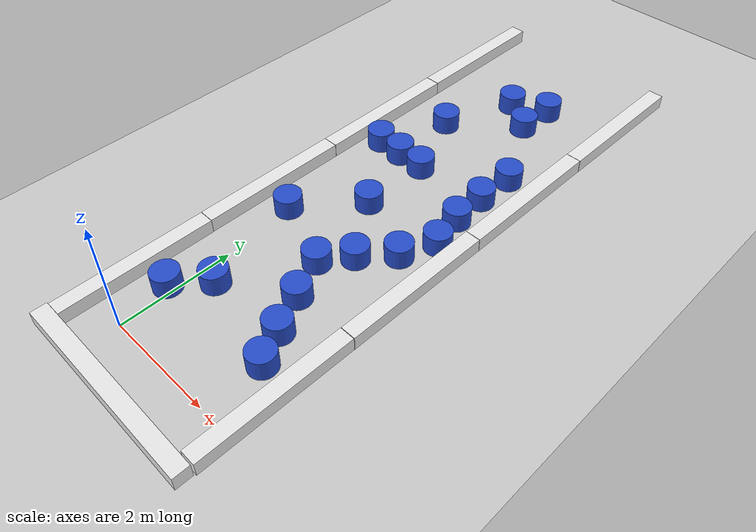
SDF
<sdf version="1.6">
 <world name="default">
  <light name="sun" type="directional">
   <pose>0 0 10 0 -0 0</pose>
   <diffuse>0.8 0.8 0.8 1</diffuse>
   <specular>0.1 0.1 0.1 1</specular>
   <attenuation>
    <range>1000</range>
    <constant>0.9</constant>
    <linear>0.01</linear>
    <quadratic>0.001</quadratic>
   </attenuation>
   <direction>-0.5 0.5 -1</direction>
  </light>
  <model name="ground_plane">
   <static>1</static>
   <link name="link">
    <collision name="collision">
     <geometry><plane><normal>0 0 1</normal><size>100 100</size></plane></geometry>
     <surface><friction><ode><mu>100</mu><mu2>50</mu2></ode></friction></surface>
    </collision>
    <visual name="visual">
     <cast_shadows>0</cast_shadows>
     <geometry><plane><normal>0 0 1</normal><size>100 100</size></plane></geometry>
     <material>
      <script><uri>file://media/materials/scripts/gazebo.material</uri><name>Gazebo/Grey</name></script>
     </material>
    </visual>
   </link>
  </model>
  <gravity>0 0 -9.8</gravity>
  <magnetic_field>6e-06 2.3e-05 -4.2e-05</magnetic_field>
  <atmosphere type="adiabatic"/>
  <physics name="default_physics" default="0" type="ode">
   <max_step_size>0.001</max_step_size>
   <real_time_factor>1</real_time_factor>
   <real_time_update_rate>1000</real_time_update_rate>
  </physics>
  <scene><ambient>0.4 0.4 0.4 1</ambient><background>0.7 0.7 0.7 1</background><shadows>1</shadows></scene>
  <spherical_coordinates>
   <surface_model>EARTH_WGS84</surface_model>
   <latitude_deg>0</latitude_deg>
   <longitude_deg>0</longitude_deg>
   <elevation>0</elevation>
   <heading_deg>0</heading_deg>
  </spherical_coordinates>
  <model name="unit_box_0_clone">
   <pose>0.905886 -0.752387 0.127652 -0.000405 -7e-06 1.5587</pose>
   <link name="link">
    <inertial>
     <mass>1</mass>
     <inertia>
      <ixx>0.166667</ixx>
      <ixy>0</ixy>
      <ixz>0</ixz>
      <iyy>0.166667</iyy>
      <iyz>0</iyz>
      <izz>0.166667</izz>
     </inertia>
    </inertial>
    <collision name="collision"><geometry><box><size>0.280228 3.67509 0.256789</size></box></geometry></collision>
    <visual name="visual">
     <geometry><box><size>0.280228 3.67509 0.256789</size></box></geometry>
     <material>
      <script><name>Gazebo/White</name><uri>file://media/materials/scripts/gazebo.material</uri></script>
     </material>
    </visual>
   </link>
  </model>
  <model name="unit_box_0_clone_0">
   <pose>2.63979 0.759503 0.128395 0 0 -0.005646</pose>
   <link name="link">
    <inertial>
     <mass>1</mass>
     <inertia>
      <ixx>0.166667</ixx>
      <ixy>0</ixy>
      <ixz>0</ixz>
      <iyy>0.166667</iyy>
      <iyz>0</iyz>
      <izz>0.166667</izz>
     </inertia>
    </inertial>
    <collision name="collision"><geometry><box><size>0.280228 2.7368 0.256789</size></box></geometry></collision>
    <visual name="visual">
     <geometry><box><size>0.280228 2.7368 0.256789</size></box></geometry>
     <material>
      <script><name>Gazebo/White</name><uri>file://media/materials/scripts/gazebo.material</uri></script>
     </material>
    </visual>
   </link>
  </model>
  <model name="unit_cylinder_0">
   <pose>-0.124687 0.936483 0.186705 1e-06 1e-06 0</pose>
   <link name="link">
    <inertial>
     <mass>1</mass>
     <inertia><ixx>0.145833</ixx><ixy>0</ixy><ixz>0</ixz><iyy>0.145833</iyy><iyz>0</iyz><izz>0.125</izz></inertia>
    </inertial>
    <collision name="collision">
     <geometry><cylinder><radius>0.245449</radius><length>0.373416</length></cylinder></geometry>
    </collision>
    <visual name="visual">
     <geometry><cylinder><radius>0.245449</radius><length>0.373416</length></cylinder></geometry>
     <material>
      <script><name>Gazebo/Blue</name><uri>file://media/materials/scripts/gazebo.material</uri></script>
     </material>
    </visual>
   </link>
  </model>
  <model name="unit_box_0_clone_0_clone">
   <pose>2.65794 3.50411 0.128395 0 0 -0.005644</pose>
   <link name="link">
    <inertial>
     <mass>1</mass>
     <inertia>
      <ixx>0.166667</ixx>
      <ixy>0</ixy>
      <ixz>0</ixz>
      <iyy>0.166667</iyy>
      <iyz>0</iyz>
      <izz>0.166667</izz>
     </inertia>
    </inertial>
    <collision name="collision"><geometry><box><size>0.280228 2.7368 0.256789</size></box></geometry></collision>
    <visual name="visual">
     <geometry><box><size>0.280228 2.7368 0.256789</size></box></geometry>
     <material>
      <script><name>Gazebo/White</name><uri>file://media/materials/scripts/gazebo.material</uri></script>
     </material>
    </visual>
   </link>
  </model>
  <model name="unit_box_0_clone_0_clone_0">
   <pose>-0.749935 0.777129 0.12839 -3e-06 -2e-06 -0.005822</pose>
   <link name="link">
    <inertial>
     <mass>1</mass>
     <inertia>
      <ixx>0.166667</ixx>
      <ixy>0</ixy>
      <ixz>0</ixz>
      <iyy>0.166667</iyy>
      <iyz>0</iyz>
      <izz>0.166667</izz>
     </inertia>
    </inertial>
    <collision name="collision"><geometry><box><size>0.280228 2.7368 0.256789</size></box></geometry></collision>
    <visual name="visual">
     <geometry><box><size>0.280228 2.7368 0.256789</size></box></geometry>
     <material>
      <script><name>Gazebo/White</name><uri>file://media/materials/scripts/gazebo.material</uri></script>
     </material>
    </visual>
   </link>
  </model>
  <model name="unit_box_0_clone_0_clone_1">
   <pose>-0.738821 3.51857 0.128395 0 0 -0.005644</pose>
   <link name="link">
    <inertial>
     <mass>1</mass>
     <inertia>
      <ixx>0.166667</ixx>
      <ixy>0</ixy>
      <ixz>0</ixz>
      <iyy>0.166667</iyy>
      <iyz>0</iyz>
      <izz>0.166667</izz>
     </inertia>
    </inertial>
    <collision name="collision"><geometry><box><size>0.280228 2.7368 0.256789</size></box></geometry></collision>
    <visual name="visual">
     <geometry><box><size>0.280228 2.7368 0.256789</size></box></geometry>
     <material>
      <script><name>Gazebo/White</name><uri>file://media/materials/scripts/gazebo.material</uri></script>
     </material>
    </visual>
   </link>
  </model>
  <model name="unit_box_0_clone_0_clone_2">
   <pose>-0.723653 6.2601 0.128395 0 0 -0.005646</pose>
   <link name="link">
    <inertial>
     <mass>1</mass>
     <inertia>
      <ixx>0.166667</ixx>
      <ixy>0</ixy>
      <ixz>0</ixz>
      <iyy>0.166667</iyy>
      <iyz>0</iyz>
      <izz>0.166667</izz>
     </inertia>
    </inertial>
    <collision name="collision"><geometry><box><size>0.280228 2.7368 0.256789</size></box></geometry></collision>
    <visual name="visual">
     <geometry><box><size>0.280228 2.7368 0.256789</size></box></geometry>
     <material>
      <script><name>Gazebo/White</name><uri>file://media/materials/scripts/gazebo.material</uri></script>
     </material>
    </visual>
   </link>
  </model>
  <model name="unit_box_0_clone_0_clone_3">
   <pose>2.67595 6.24565 0.128395 0 0 -0.005646</pose>
   <link name="link">
    <inertial>
     <mass>1</mass>
     <inertia>
      <ixx>0.166667</ixx>
      <ixy>0</ixy>
      <ixz>0</ixz>
      <iyy>0.166667</iyy>
      <iyz>0</iyz>
      <izz>0.166667</izz>
     </inertia>
    </inertial>
    <collision name="collision"><geometry><box><size>0.280228 2.7368 0.256789</size></box></geometry></collision>
    <visual name="visual">
     <geometry><box><size>0.280228 2.7368 0.256789</size></box></geometry>
     <material>
      <script><name>Gazebo/White</name><uri>file://media/materials/scripts/gazebo.material</uri></script>
     </material>
    </visual>
   </link>
  </model>
  <model name="unit_box_0_clone_0_clone_4">
   <pose>2.6941 8.98623 0.128395 0 0 -0.005644</pose>
   <link name="link">
    <inertial>
     <mass>1</mass>
     <inertia>
      <ixx>0.166667</ixx>
      <ixy>0</ixy>
      <ixz>0</ixz>
      <iyy>0.166667</iyy>
      <iyz>0</iyz>
      <izz>0.166667</izz>
     </inertia>
    </inertial>
    <collision name="collision"><geometry><box><size>0.280228 2.7368 0.256789</size></box></geometry></collision>
    <visual name="visual">
     <geometry><box><size>0.280228 2.7368 0.256789</size></box></geometry>
     <material>
      <script><name>Gazebo/White</name><uri>file://media/materials/scripts/gazebo.material</uri></script>
     </material>
    </visual>
   </link>
  </model>
  <model name="unit_box_0_clone_0_clone_5">
   <pose>-0.709426 9.00255 0.128395 0 0 -0.005644</pose>
   <link name="link">
    <inertial>
     <mass>1</mass>
     <inertia>
      <ixx>0.166667</ixx>
      <ixy>0</ixy>
      <ixz>0</ixz>
      <iyy>0.166667</iyy>
      <iyz>0</iyz>
      <izz>0.166667</izz>
     </inertia>
    </inertial>
    <collision name="collision"><geometry><box><size>0.280228 2.7368 0.256789</size></box></geometry></collision>
    <visual name="visual">
     <geometry><box><size>0.280228 2.7368 0.256789</size></box></geometry>
     <material>
      <script><name>Gazebo/White</name><uri>file://media/materials/scripts/gazebo.material</uri></script>
     </material>
    </visual>
   </link>
  </model>
  <model name="unit_cylinder_0_clone">
   <pose>0.356189 1.48764 0.186703 0 -0 0</pose>
   <link name="link">
    <inertial>
     <mass>1</mass>
     <inertia><ixx>0.145833</ixx><ixy>0</ixy><ixz>0</ixz><iyy>0.145833</iyy><iyz>0</iyz><izz>0.125</izz></inertia>
    </inertial>
    <collision name="collision">
     <geometry><cylinder><radius>0.245449</radius><length>0.373416</length></cylinder></geometry>
    </collision>
    <visual name="visual">
     <geometry><cylinder><radius>0.245449</radius><length>0.373416</length></cylinder></geometry>
     <material>
      <script><name>Gazebo/Blue</name><uri>file://media/materials/scripts/gazebo.material</uri></script>
     </material>
    </visual>
   </link>
  </model>
  <model name="unit_cylinder_0_clone_0">
   <pose>2.07013 1.03187 0.186703 0 -0 0</pose>
   <link name="link">
    <inertial>
     <mass>1</mass>
     <inertia><ixx>0.145833</ixx><ixy>0</ixy><ixz>0</ixz><iyy>0.145833</iyy><iyz>0</iyz><izz>0.125</izz></inertia>
    </inertial>
    <collision name="collision">
     <geometry><cylinder><radius>0.245449</radius><length>0.373416</length></cylinder></geometry>
    </collision>
    <visual name="visual">
     <geometry><cylinder><radius>0.245449</radius><length>0.373416</length></cylinder></geometry>
     <material>
      <script><name>Gazebo/Blue</name><uri>file://media/materials/scripts/gazebo.material</uri></script>
     </material>
    </visual>
   </link>
  </model>
  <model name="unit_cylinder_0_clone_1">
   <pose>1.79066 1.55974 0.186701 0 1e-06 0</pose>
   <link name="link">
    <inertial>
     <mass>1</mass>
     <inertia><ixx>0.145833</ixx><ixy>0</ixy><ixz>0</ixz><iyy>0.145833</iyy><iyz>0</iyz><izz>0.125</izz></inertia>
    </inertial>
    <collision name="collision">
     <geometry><cylinder><radius>0.245449</radius><length>0.373416</length></cylinder></geometry>
    </collision>
    <visual name="visual">
     <geometry><cylinder><radius>0.245449</radius><length>0.373416</length></cylinder></geometry>
     <material>
      <script><name>Gazebo/Blue</name><uri>file://media/materials/scripts/gazebo.material</uri></script>
     </material>
    </visual>
   </link>
  </model>
  <model name="unit_cylinder_0_clone_2">
   <pose>1.47956 2.18794 0.186703 0 -0 0</pose>
   <link name="link">
    <inertial>
     <mass>1</mass>
     <inertia><ixx>0.145833</ixx><ixy>0</ixy><ixz>0</ixz><iyy>0.145833</iyy><iyz>0</iyz><izz>0.125</izz></inertia>
    </inertial>
    <collision name="collision">
     <geometry><cylinder><radius>0.245449</radius><length>0.373416</length></cylinder></geometry>
    </collision>
    <visual name="visual">
     <geometry><cylinder><radius>0.245449</radius><length>0.373416</length></cylinder></geometry>
     <material>
      <script><name>Gazebo/Blue</name><uri>file://media/materials/scripts/gazebo.material</uri></script>
     </material>
    </visual>
   </link>
  </model>
  <model name="unit_cylinder_0_clone_3">
   <pose>1.15668 2.86892 0.186701 0 1e-06 0</pose>
   <link name="link">
    <inertial>
     <mass>1</mass>
     <inertia><ixx>0.145833</ixx><ixy>0</ixy><ixz>0</ixz><iyy>0.145833</iyy><iyz>0</iyz><izz>0.125</izz></inertia>
    </inertial>
    <collision name="collision">
     <geometry><cylinder><radius>0.245449</radius><length>0.373416</length></cylinder></geometry>
    </collision>
    <visual name="visual">
     <geometry><cylinder><radius>0.245449</radius><length>0.373416</length></cylinder></geometry>
     <material>
      <script><name>Gazebo/Blue</name><uri>file://media/materials/scripts/gazebo.material</uri></script>
     </material>
    </visual>
   </link>
  </model>
  <model name="unit_cylinder_0_clone_4">
   <pose>-0.109023 3.3624 0.186703 0 -0 0</pose>
   <link name="link">
    <inertial>
     <mass>1</mass>
     <inertia><ixx>0.145833</ixx><ixy>0</ixy><ixz>0</ixz><iyy>0.145833</iyy><iyz>0</iyz><izz>0.125</izz></inertia>
    </inertial>
    <collision name="collision">
     <geometry><cylinder><radius>0.245449</radius><length>0.373416</length></cylinder></geometry>
    </collision>
    <visual name="visual">
     <geometry><cylinder><radius>0.245449</radius><length>0.373416</length></cylinder></geometry>
     <material>
      <script><name>Gazebo/Blue</name><uri>file://media/materials/scripts/gazebo.material</uri></script>
     </material>
    </visual>
   </link>
  </model>
  <model name="unit_cylinder_0_clone_5">
   <pose>0.77286 4.39833 0.186701 0 1e-06 0</pose>
   <link name="link">
    <inertial>
     <mass>1</mass>
     <inertia><ixx>0.145833</ixx><ixy>0</ixy><ixz>0</ixz><iyy>0.145833</iyy><iyz>0</iyz><izz>0.125</izz></inertia>
    </inertial>
    <collision name="collision">
     <geometry><cylinder><radius>0.245449</radius><length>0.373416</length></cylinder></geometry>
    </collision>
    <visual name="visual">
     <geometry><cylinder><radius>0.245449</radius><length>0.373416</length></cylinder></geometry>
     <material>
      <script><name>Gazebo/Blue</name><uri>file://media/materials/scripts/gazebo.material</uri></script>
     </material>
    </visual>
   </link>
  </model>
  <model name="unit_cylinder_0_clone_6">
   <pose>1.52423 3.35801 0.186703 0 -0 0</pose>
   <link name="link">
    <inertial>
     <mass>1</mass>
     <inertia><ixx>0.145833</ixx><ixy>0</ixy><ixz>0</ixz><iyy>0.145833</iyy><iyz>0</iyz><izz>0.125</izz></inertia>
    </inertial>
    <collision name="collision">
     <geometry><cylinder><radius>0.245449</radius><length>0.373416</length></cylinder></geometry>
    </collision>
    <visual name="visual">
     <geometry><cylinder><radius>0.245449</radius><length>0.373416</length></cylinder></geometry>
     <material>
      <script><name>Gazebo/Blue</name><uri>file://media/materials/scripts/gazebo.material</uri></script>
     </material>
    </visual>
   </link>
  </model>
  <model name="unit_cylinder_0_clone_7">
   <pose>1.99491 3.86985 0.186701 0 1e-06 0</pose>
   <link name="link">
    <inertial>
     <mass>1</mass>
     <inertia><ixx>0.145833</ixx><ixy>0</ixy><ixz>0</ixz><iyy>0.145833</iyy><iyz>0</iyz><izz>0.125</izz></inertia>
    </inertial>
    <collision name="collision">
     <geometry><cylinder><radius>0.245449</radius><length>0.373416</length></cylinder></geometry>
    </collision>
    <visual name="visual">
     <geometry><cylinder><radius>0.245449</radius><length>0.373416</length></cylinder></geometry>
     <material>
      <script><name>Gazebo/Blue</name><uri>file://media/materials/scripts/gazebo.material</uri></script>
     </material>
    </visual>
   </link>
  </model>
  <model name="unit_cylinder_0_clone_8">
   <pose>2.26026 4.49066 0.186706 0 -1e-06 0</pose>
   <link name="link">
    <inertial>
     <mass>1</mass>
     <inertia><ixx>0.145833</ixx><ixy>0</ixy><ixz>0</ixz><iyy>0.145833</iyy><iyz>0</iyz><izz>0.125</izz></inertia>
    </inertial>
    <collision name="collision">
     <geometry><cylinder><radius>0.245449</radius><length>0.373416</length></cylinder></geometry>
    </collision>
    <visual name="visual">
     <geometry><cylinder><radius>0.245449</radius><length>0.373416</length></cylinder></geometry>
     <material>
      <script><name>Gazebo/Blue</name><uri>file://media/materials/scripts/gazebo.material</uri></script>
     </material>
    </visual>
   </link>
  </model>
  <model name="unit_cylinder_0_clone_9">
   <pose>2.10914 5.12838 0.186706 0 -1e-06 0</pose>
   <link name="link">
    <inertial>
     <mass>1</mass>
     <inertia><ixx>0.145833</ixx><ixy>0</ixy><ixz>0</ixz><iyy>0.145833</iyy><iyz>0</iyz><izz>0.125</izz></inertia>
    </inertial>
    <collision name="collision">
     <geometry><cylinder><radius>0.245449</radius><length>0.373416</length></cylinder></geometry>
    </collision>
    <visual name="visual">
     <geometry><cylinder><radius>0.245449</radius><length>0.373416</length></cylinder></geometry>
     <material>
      <script><name>Gazebo/Blue</name><uri>file://media/materials/scripts/gazebo.material</uri></script>
     </material>
    </visual>
   </link>
  </model>
  <model name="unit_cylinder_0_clone_10">
   <pose>2.08184 5.78395 0.186706 0 -1e-06 0</pose>
   <link name="link">
    <inertial>
     <mass>1</mass>
     <inertia><ixx>0.145833</ixx><ixy>0</ixy><ixz>0</ixz><iyy>0.145833</iyy><iyz>0</iyz><izz>0.125</izz></inertia>
    </inertial>
    <collision name="collision">
     <geometry><cylinder><radius>0.245449</radius><length>0.373416</length></cylinder></geometry>
    </collision>
    <visual name="visual">
     <geometry><cylinder><radius>0.245449</radius><length>0.373416</length></cylinder></geometry>
     <material>
      <script><name>Gazebo/Blue</name><uri>file://media/materials/scripts/gazebo.material</uri></script>
     </material>
    </visual>
   </link>
  </model>
  <model name="unit_cylinder_0_clone_11">
   <pose>0.782308 5.67627 0.186705 1e-06 -0 0</pose>
   <link name="link">
    <inertial>
     <mass>1</mass>
     <inertia><ixx>0.145833</ixx><ixy>0</ixy><ixz>0</ixz><iyy>0.145833</iyy><iyz>0</iyz><izz>0.125</izz></inertia>
    </inertial>
    <collision name="collision">
     <geometry><cylinder><radius>0.245449</radius><length>0.373416</length></cylinder></geometry>
    </collision>
    <visual name="visual">
     <geometry><cylinder><radius>0.245449</radius><length>0.373416</length></cylinder></geometry>
     <material>
      <script><name>Gazebo/Blue</name><uri>file://media/materials/scripts/gazebo.material</uri></script>
     </material>
    </visual>
   </link>
  </model>
  <model name="unit_cylinder_0_clone_12">
   <pose>-0.246564 5.71692 0.186703 0 -0 0</pose>
   <link name="link">
    <inertial>
     <mass>1</mass>
     <inertia><ixx>0.145833</ixx><ixy>0</ixy><ixz>0</ixz><iyy>0.145833</iyy><iyz>0</iyz><izz>0.125</izz></inertia>
    </inertial>
    <collision name="collision">
     <geometry><cylinder><radius>0.245449</radius><length>0.373416</length></cylinder></geometry>
    </collision>
    <visual name="visual">
     <geometry><cylinder><radius>0.245449</radius><length>0.373416</length></cylinder></geometry>
     <material>
      <script><name>Gazebo/Blue</name><uri>file://media/materials/scripts/gazebo.material</uri></script>
     </material>
    </visual>
   </link>
  </model>
  <model name="unit_cylinder_0_clone_13">
   <pose>0.263164 5.69328 0.186701 0 1e-06 0</pose>
   <link name="link">
    <inertial>
     <mass>1</mass>
     <inertia><ixx>0.145833</ixx><ixy>0</ixy><ixz>0</ixz><iyy>0.145833</iyy><iyz>0</iyz><izz>0.125</izz></inertia>
    </inertial>
    <collision name="collision">
     <geometry><cylinder><radius>0.245449</radius><length>0.373416</length></cylinder></geometry>
    </collision>
    <visual name="visual">
     <geometry><cylinder><radius>0.245449</radius><length>0.373416</length></cylinder></geometry>
     <material>
      <script><name>Gazebo/Blue</name><uri>file://media/materials/scripts/gazebo.material</uri></script>
     </material>
    </visual>
   </link>
  </model>
  <model name="unit_cylinder_0_clone_14">
   <pose>0.247802 6.95883 0.186701 -1e-06 -1e-06 0</pose>
   <link name="link">
    <inertial>
     <mass>1</mass>
     <inertia><ixx>0.145833</ixx><ixy>0</ixy><ixz>0</ixz><iyy>0.145833</iyy><iyz>0</iyz><izz>0.125</izz></inertia>
    </inertial>
    <collision name="collision">
     <geometry><cylinder><radius>0.245449</radius><length>0.373416</length></cylinder></geometry>
    </collision>
    <visual name="visual">
     <geometry><cylinder><radius>0.245449</radius><length>0.373416</length></cylinder></geometry>
     <material>
      <script><name>Gazebo/Blue</name><uri>file://media/materials/scripts/gazebo.material</uri></script>
     </material>
    </visual>
   </link>
  </model>
  <model name="unit_cylinder_0_clone_15">
   <pose>2.10419 6.50962 0.186705 1e-06 1e-06 0</pose>
   <link name="link">
    <inertial>
     <mass>1</mass>
     <inertia><ixx>0.145833</ixx><ixy>0</ixy><ixz>0</ixz><iyy>0.145833</iyy><iyz>0</iyz><izz>0.125</izz></inertia>
    </inertial>
    <collision name="collision">
     <geometry><cylinder><radius>0.245449</radius><length>0.373416</length></cylinder></geometry>
    </collision>
    <visual name="visual">
     <geometry><cylinder><radius>0.245449</radius><length>0.373416</length></cylinder></geometry>
     <material>
      <script><name>Gazebo/Blue</name><uri>file://media/materials/scripts/gazebo.material</uri></script>
     </material>
    </visual>
   </link>
  </model>
  <model name="unit_cylinder_0_clone_16">
   <pose>1.37161 7.88727 0.186703 0 -0 0</pose>
   <link name="link">
    <inertial>
     <mass>1</mass>
     <inertia><ixx>0.145833</ixx><ixy>0</ixy><ixz>0</ixz><iyy>0.145833</iyy><iyz>0</iyz><izz>0.125</izz></inertia>
    </inertial>
    <collision name="collision">
     <geometry><cylinder><radius>0.245449</radius><length>0.373416</length></cylinder></geometry>
    </collision>
    <visual name="visual">
     <geometry><cylinder><radius>0.245449</radius><length>0.373416</length></cylinder></geometry>
     <material>
      <script><name>Gazebo/Blue</name><uri>file://media/materials/scripts/gazebo.material</uri></script>
     </material>
    </visual>
   </link>
  </model>
  <model name="unit_cylinder_0_clone_17">
   <pose>1.41028 8.59377 0.186703 0 -0 0</pose>
   <link name="link">
    <inertial>
     <mass>1</mass>
     <inertia><ixx>0.145833</ixx><ixy>0</ixy><ixz>0</ixz><iyy>0.145833</iyy><iyz>0</iyz><izz>0.125</izz></inertia>
    </inertial>
    <collision name="collision">
     <geometry><cylinder><radius>0.245449</radius><length>0.373416</length></cylinder></geometry>
    </collision>
    <visual name="visual">
     <geometry><cylinder><radius>0.245449</radius><length>0.373416</length></cylinder></geometry>
     <material>
      <script><name>Gazebo/Blue</name><uri>file://media/materials/scripts/gazebo.material</uri></script>
     </material>
    </visual>
   </link>
  </model>
  <model name="unit_cylinder_0_clone_18">
   <pose>0.772122 8.30533 0.186703 0 -0 0</pose>
   <link name="link">
    <inertial>
     <mass>1</mass>
     <inertia><ixx>0.145833</ixx><ixy>0</ixy><ixz>0</ixz><iyy>0.145833</iyy><iyz>0</iyz><izz>0.125</izz></inertia>
    </inertial>
    <collision name="collision">
     <geometry><cylinder><radius>0.245449</radius><length>0.373416</length></cylinder></geometry>
    </collision>
    <visual name="visual">
     <geometry><cylinder><radius>0.245449</radius><length>0.373416</length></cylinder></geometry>
     <material>
      <script><name>Gazebo/Blue</name><uri>file://media/materials/scripts/gazebo.material</uri></script>
     </material>
    </visual>
   </link>
  </model>
 </world>
</sdf>
